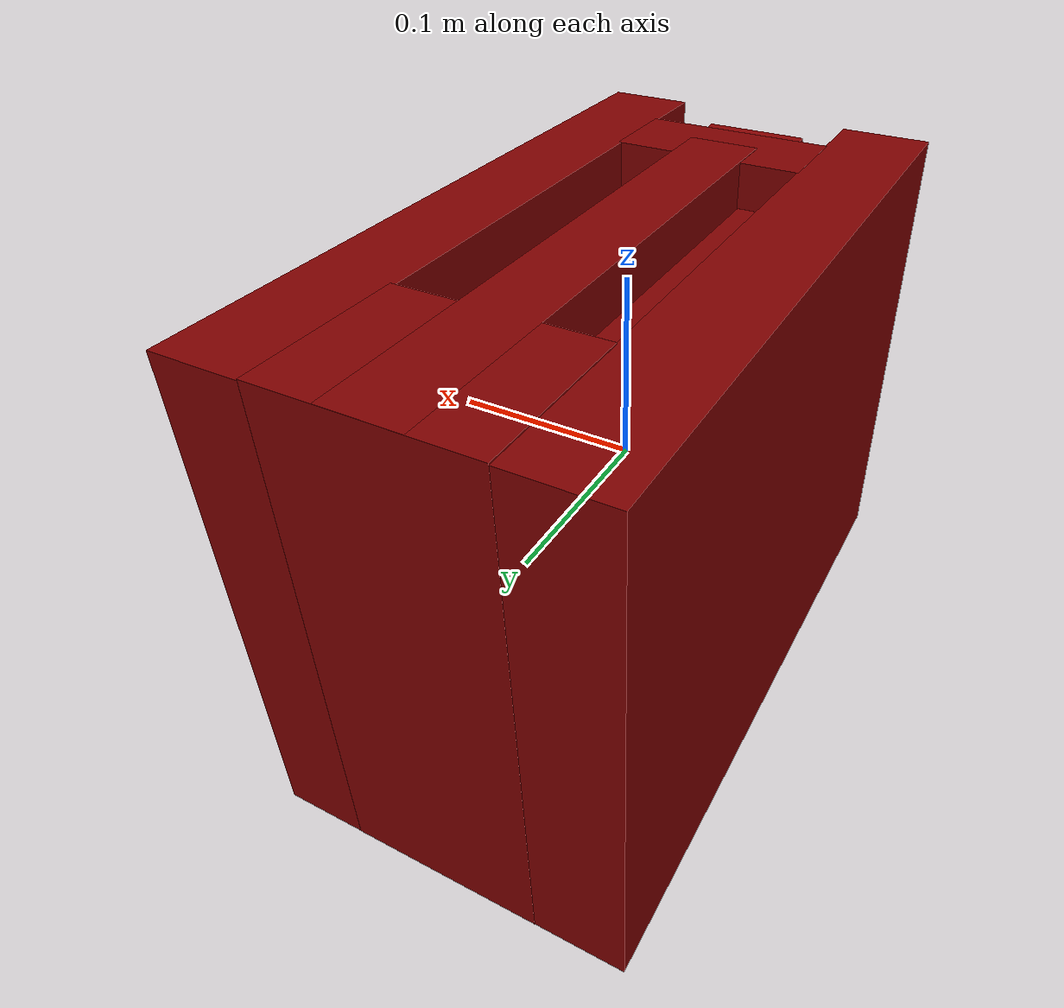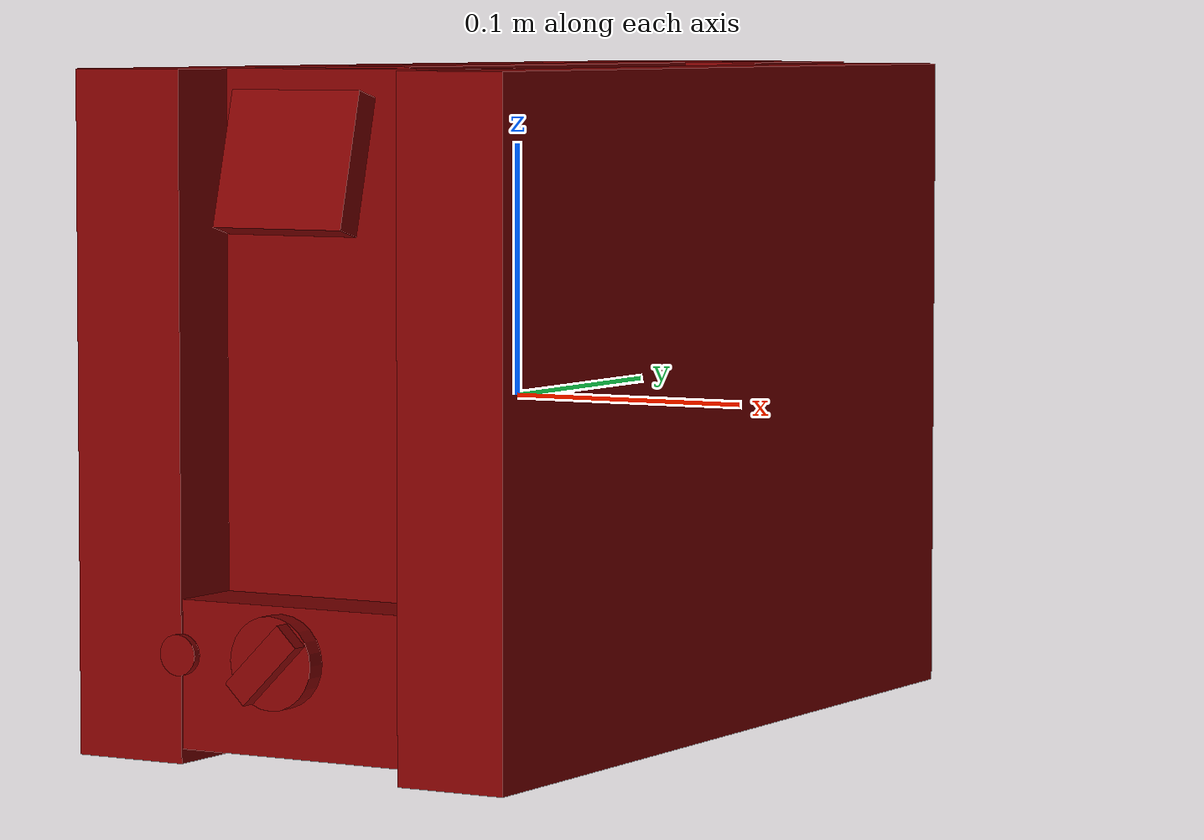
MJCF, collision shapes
<?xml version='1.0' encoding='UTF-8'?>
<mujoco model="model">
  <compiler angle="radian"/>
  <asset>
    <mesh file="visuals/Body001.obj" name="Body001_vis"/>
    <mesh file="visuals/Button001.obj" name="Button001_vis"/>
    <mesh file="visuals/Knob001.obj" name="Knob001_vis"/>
    <mesh file="visuals/Lever001.obj" name="Lever001_vis"/>
    <texture file="visuals/T_BC001.png" name="Body001_material" type="2d"/>
    <material name="Body001_material" rgba="1 1 1 1.0" texture="Body001_material" shininess="0.4472135901451111" specular="2"/>
    <texture file="visuals/T_BC001.png" name="Button001_material" type="2d"/>
    <material name="Button001_material" rgba="1 1 1 1.0" texture="Button001_material" shininess="0.4472135901451111" specular="0.3103448502657381"/>
    <texture file="visuals/T_BC001.png" name="Knob001_material" type="2d"/>
    <material name="Knob001_material" rgba="1 1 1 1.0" texture="Knob001_material" shininess="0.4472135901451111" specular="0.3103448502657381"/>
    <texture file="visuals/T_BC001.png" name="Lever001_material" type="2d"/>
    <material name="Lever001_material" rgba="1 1 1 1.0" texture="Lever001_material" shininess="0.4472135901451111" specular="0.3103448502657381"/>
  </asset>
  <default>
    <default class="visual">
      <geom conaffinity="0" contype="0" group="1" type="mesh"/>
    </default>
    <default class="collision">
      <geom group="0" rgba="0.5 0 0 0.5"/>
    </default>
    <default class="spawn">
      <geom group="0" rgba="1 1 1 0.5" contype="0" conaffinity="0"/>
      <site group="0" rgba="1 1 1 0.5"/>
    </default>
    <default class="region">
      <geom group="1" conaffinity="0" contype="0" rgba="0 1 0 0"/>
    </default>
  </default>
  <worldbody>
    <body>
      <body name="object">
        <geom mesh="Body001_vis" type="mesh" solimp="0.998 0.998 0.001" solref="0.001 1" density="100" friction="0.95 0.3 0.1" class="visual" material="Body001_material"/>
        <geom class="collision" type="box" pos="-0.072867 0.010583 0.000240" size="0.02335650660097599 0.17523840069770813 0.13049626350402832" quat="1.0 0.0 0.0 0.0"/>
        <geom class="collision" type="box" pos="0.071546 0.008347 0.000240" size="0.02243145927786827 0.1774740070104599 0.13049626350402832" quat="1.0 0.0 0.0 0.0"/>
        <geom class="collision" type="box" pos="-0.000418 0.037550 0.001854" size="0.018771901726722717 0.14827130734920502 0.12962864339351654" quat="1.0 0.0 0.0 0.0"/>
        <geom class="collision" type="box" pos="0.000180 0.145471 0.000613" size="0.050426922738552094 0.04045730456709862 0.13086915016174316" quat="1.0 0.0 0.0 0.0"/>
        <geom class="collision" type="box" pos="0.000180 -0.109831 0.005200" size="0.050426919013261795 0.022669494152069092 0.12563851475715637" quat="1.0 0.0 0.0 0.0"/>
        <geom class="collision" type="box" pos="0.004888 0.011142 -0.096270" size="0.05540130287408829 0.17467856407165527 0.02838781103491783" quat="1.0 0.0 0.0 0.0"/>
        <body name="Button001">
          <joint axis="0.0 1.0 0.0" pos="-0.047234 -0.168270 -0.088185" limited="true" name="Button001_joint" range="0.0 0.002" type="slide" damping="1" frictionloss="1" armature=".01" stiffness="0.05"/>
          <geom mesh="Button001_vis" type="mesh" solimp="0.998 0.998 0.001" solref="0.001 1" density="100" friction="0.95 0.3 0.1" class="visual" material="Button001_material"/>
          <geom class="collision" type="cylinder" pos="-0.047263 -0.168745 -0.088185" size="0.007795682642608881 0.0016939903143793344" quat="0.7071067094802856 0.70710688829422 0.0 0.0"/>
        </body>
        <body name="Knob001">
          <joint axis="0.0 1.0 0.0" pos="-0.000113 -0.174706 -0.087178" limited="true" name="Knob001_joint" range="0.0 4.625122517784973" type="hinge" damping="0.05" armature="0.001"/>
          <geom mesh="Knob001_vis" type="mesh" solimp="0.998 0.998 0.001" solref="0.001 1" density="100" friction="0.95 0.3 0.1" class="visual" material="Knob001_material"/>
          <geom class="collision" type="cylinder" pos="-0.000113 -0.174639 -0.087178" size="0.01758095808327198 0.004087055567651987" quat="0.7071068286895752 0.7071067690849304 0.0 0.0"/>
          <geom class="collision" type="box" pos="-0.000113 -0.180315 -0.087178" size="0.005595101974904537 0.004999999888241291 0.016220778226852417" quat="0.9238795042037964 0.0 0.3826834559440613 0.0"/>
        </body>
        <body name="Lever001">
          <joint axis="0.0 0.0 -1.0" pos="0.000001 -0.142424 0.095007" limited="true" name="Lever001_joint" range="0.0 0.12" type="slide" damping="1" frictionloss="1" armature=".01" stiffness="1" springref="-2"/>
          <geom mesh="Lever001_vis" type="mesh" solimp="0.998 0.998 0.001" solref="0.001 1" density="100" friction="0.95 0.3 0.1" class="visual" material="Lever001_material"/>
          <geom class="collision" type="box" pos="0.000207 -0.161914 0.096681" size="0.0056160325184464455 0.027931539341807365 0.026226477697491646" quat="0.7013015151023865 -0.09042166918516159 0.09042159467935562 0.7013016939163208" name="lever_knob"/>
          <geom class="collision" type="box" pos="-0.033999 0.009264 0.105710" size="0.01249999925494194 0.09201328456401825 0.0030299071222543716" quat="1.0 0.0 0.0 0.0" name="slotL_floor"/>
          <geom class="collision" type="box" pos="0.033842 0.009264 0.105710" size="0.01249999925494194 0.09201328456401825 0.0030299073550850153" quat="1.0 0.0 0.0 0.0" name="slotR_floor"/>
        </body>
        <geom class="region" name="reg_main" type="box" pos="0.0 0.0090335 0.0" size="0.093396 0.1765095 0.129712"/>
      </body>
    </body>
  </worldbody>
  <actuator>
    <motor name="Button001_joint_actuator" joint="Button001_joint" gear="0.5"/>
    <motor name="Knob001_joint_actuator" joint="Knob001_joint" gear="10"/>
    <motor name="Lever001_joint_actuator" joint="Lever001_joint" gear="10"/>
  </actuator>
</mujoco>
